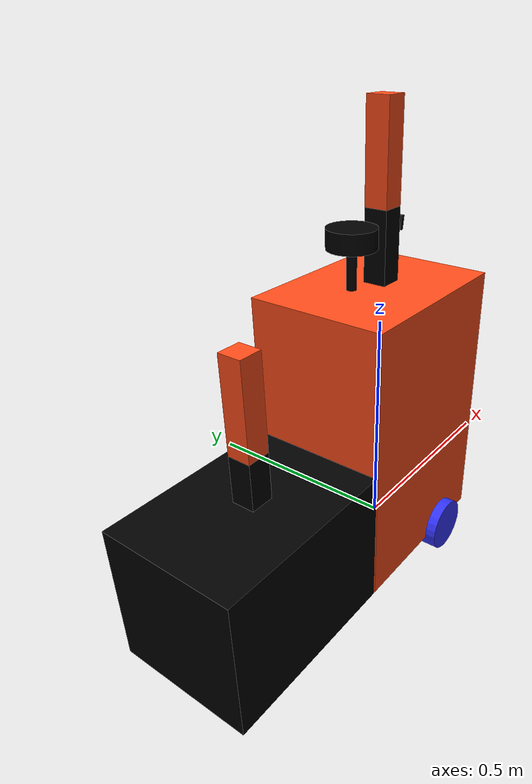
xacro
<?xml version="1.0"?>
<robot xmlns:xacro="http://www.ros.org/wiki/xacro"  name="robot">

    <xacro:arg name="use_ros2_control" default="true"/>

    <xacro:include filename = "robot_core.xacro" />

    <xacro:if value="$(arg use_ros2_control)">
        <xacro:include filename="ros2_control.xacro" />
    </xacro:if>
    <xacro:unless value="$(arg use_ros2_control)">
        <xacro:include filename="gazebo_control.xacro" />
    </xacro:unless>
    <xacro:include filename = "lidar.xacro"/>
    <xacro:include filename = "camera.xacro"/>
    <xacro:include filename = "robot_arm.xacro"/>

</robot>

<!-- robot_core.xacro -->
<robot xmlns:xacro="http://www.ros.org/wiki/xacro" >

    <xacro:include filename="inertial_macros.xacro"/>

    <xacro:property name="chassis_length" value="0.4"/>
    <xacro:property name="chassis_width" value="0.3"/>
    <xacro:property name="chassis_height" value="0.6"/>
    <xacro:property name="chassis_mass" value="1.0"/>
    <xacro:property name="wheel_radius" value="0.06"/>
    <xacro:property name="wheel_thickness" value="0.05"/>
    <xacro:property name="wheel_mass" value="0.05"/>
    <xacro:property name="wheel_offset_x" value="0.226"/>
    <xacro:property name="wheel_offset_y" value="0.1485"/>
    <xacro:property name="wheel_offset_z" value="0.01"/>
    <xacro:property name="caster_wheel_radius" value="0.028"/>
    <xacro:property name="caster_wheel_mass" value="0.01"/>
    <xacro:property name="caster_wheel_offset_x" value="-0.25"/>
    <xacro:property name="caster_wheel_offset_z" value="${wheel_offset_z - wheel_radius + caster_wheel_radius}"/>

    <material name="white">
        <color rgba="1 1 1 1" />
    </material>

    <material name="orange">
        <color rgba="1 0.3 0.1 1"/>
    </material>

    <material name="blue">
        <color rgba="0.2 0.2 1 1"/>
    </material>

    <material name="black">
        <color rgba="0 0 0 1"/>
    </material>

    <material name="red">
        <color rgba="1 0 0 1"/>
    </material>

    <!-- BASE LINK -->

    <link name="base_link">

    </link>

    <!-- BASE_FOOTPRINT LINK -->

    <joint name="base_footprint_joint" type="fixed">
        <parent link="base_link"/>
        <child link="base_footprint"/>
        <origin xyz="0 0 0" rpy="0 0 0"/>
    </joint>

    <link name="base_footprint">
    </link>

    <!-- CHASSIS LINK -->

    <joint name="chassis_joint" type="fixed">
        <parent link="base_link"/>
        <child link="chassis"/>
        <origin xyz="${-wheel_offset_x} 0 ${-wheel_offset_z}"/>
    </joint>

    <link name="chassis">
        <visual>
            <origin xyz="${chassis_length/2} 0 ${chassis_height/2}"/>
            <geometry>
                <box size="${chassis_length} ${chassis_width} ${chassis_height}"/>
            </geometry>
            <material name="orange"/>
        </visual>
        <collision>
            <origin xyz="${chassis_length/2} 0 ${chassis_height/2}"/>
            <geometry>
                <box size="${chassis_length} ${chassis_width} ${chassis_height}"/>
            </geometry>
        </collision>
        <xacro:inertial_box mass="0.5" x="${chassis_length}" y="${chassis_width}" z="${chassis_height}">
            <origin xyz="${chassis_length/2} 0 ${chassis_height/2}" rpy="0 0 0"/>
        </xacro:inertial_box>
    </link>

    <gazebo reference="chassis">
        <material>Gazebo/Orange</material>
    </gazebo>

    <!-- CHASSIS_OPTICAL LINK -->

    <joint name="chassis_optical_joint" type="fixed">
        <parent link="base_link"/>
        <child link="chassis_optical"/>
        <origin xyz="-0.43 0 ${-wheel_offset_z}"/>
    </joint>

    <link name="chassis_optical">
        <visual>
            <origin xyz="0 0 ${chassis_height/4}"/>
            <geometry>
                <box size="${chassis_length} ${chassis_width} ${chassis_height/2}"/>
            </geometry>
            <material name="black"/>
        </visual>
        <collision>
            <origin xyz="0 0 ${chassis_height/4}"/>
            <geometry>
                <box size="${chassis_length} ${chassis_width} ${chassis_height/2}"/>
            </geometry>
        </collision>
        <xacro:inertial_box mass="0.5" x="${chassis_length}" y="${chassis_width}" z="${chassis_height}">
            <origin xyz="0 0 ${chassis_height/4}" rpy="0 0 0"/>
        </xacro:inertial_box>
    </link>

    <gazebo reference="chassis_optical">
        <material>Gazebo/Black</material>
    </gazebo>

    <!-- LEFT WHEEL LINK -->

    <joint name="left_wheel_joint" type="continuous">
        <parent link="base_link"/>
        <child link="left_wheel"/>
        <origin xyz="0.05 ${wheel_offset_y} 0" rpy="-${pi/2} 0 0" />
        <axis xyz="0 0 1"/>
    </joint>

    <link name="left_wheel">
        <visual>
            <geometry>
                <cylinder radius="${wheel_radius}" length="${wheel_thickness}"/>
            </geometry>
            <material name="blue"/>
        </visual>
        <collision>
            <geometry>
                <sphere radius="${wheel_radius}"/>
            </geometry>
        </collision>
        <xacro:inertial_cylinder mass="${wheel_mass}" length="${wheel_thickness}" radius="${wheel_radius}">
            <origin xyz="0 0 0" rpy="0 0 0"/>
        </xacro:inertial_cylinder>
    </link>

    <gazebo reference="left_wheel">
        <material>Gazebo/Blue</material>
    </gazebo>

    <!-- RIGHT WHEEL LINK -->

    <joint name="right_wheel_joint" type="continuous">
        <parent link="base_link"/>
        <child link="right_wheel"/>
        <origin xyz="0.05 ${-wheel_offset_y} 0" rpy="${pi/2} 0 0" />
        <axis xyz="0 0 -1"/>
    </joint>

    <link name="right_wheel">
        <visual>
            <geometry>
                <cylinder radius="${wheel_radius}" length="${wheel_thickness}"/>
            </geometry>
            <material name="blue"/>
        </visual>
        <collision>
            <geometry>
                <sphere radius="${wheel_radius}"/>
            </geometry>
        </collision>
        <xacro:inertial_cylinder mass="${wheel_mass}" length="${wheel_thickness}" radius="${wheel_radius}">
            <origin xyz="0 0 0" rpy="0 0 0"/>
        </xacro:inertial_cylinder>
    </link>

    <gazebo reference="right_wheel">
        <material>Gazebo/Blue</material>
    </gazebo>

    <!-- CASTER WHEEL LINK -->

    <joint name="caster_wheel_joint" type="fixed">
        <parent link="chassis"/>
        <child link="caster_wheel"/>
        <origin xyz="${caster_wheel_offset_x} 0 ${caster_wheel_offset_z}"/>
    </joint>

    <link name="caster_wheel">
        <visual>
            <geometry>
                <sphere radius="${caster_wheel_radius}"/>
            </geometry>
            <material name="white"/>
        </visual>
        <collision>
            <geometry>
                <sphere radius="${caster_wheel_radius}"/>
            </geometry>
        </collision>
        <xacro:inertial_sphere mass="${caster_wheel_mass}" radius="${caster_wheel_radius}">
            <origin xyz="0 0 0" rpy="0 0 0"/>
        </xacro:inertial_sphere>
    </link>

    <gazebo reference="caster_wheel">
        <material>Gazebo/White</material>
        <mu1 value="0.001"/>
        <mu2 value="0.001"/>
    </gazebo>

</robot>

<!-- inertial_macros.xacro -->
<robot xmlns:xacro="http://www.ros.org/wiki/xacro" >

    <!-- Specify some standard inertial calculations https://en.wikipedia.org/wiki/List_of_moments_of_inertia -->
    <!-- These make use of xacro's mathematical functionality -->

    <xacro:macro name="inertial_sphere" params="mass radius *origin">
        <inertial>
            <xacro:insert_block name="origin"/>
            <mass value="${mass}" />
            <inertia ixx="${(2/5) * mass * (radius*radius)}" ixy="0.0" ixz="0.0"
                    iyy="${(2/5) * mass * (radius*radius)}" iyz="0.0"
                    izz="${(2/5) * mass * (radius*radius)}" />
        </inertial>
    </xacro:macro>

    <xacro:macro name="inertial_box" params="mass x y z *origin">
        <inertial>
            <xacro:insert_block name="origin"/>
            <mass value="${mass}" />
            <inertia ixx="${(1/12) * mass * (y*y+z*z)}" ixy="0.0" ixz="0.0"
                    iyy="${(1/12) * mass * (x*x+z*z)}" iyz="0.0"
                    izz="${(1/12) * mass * (x*x+y*y)}" />
        </inertial>
    </xacro:macro>

    <xacro:macro name="inertial_cylinder" params="mass length radius *origin">
        <inertial>
            <xacro:insert_block name="origin"/>
            <mass value="${mass}" />
            <inertia ixx="${(1/12) * mass * (3*radius*radius + length*length)}" ixy="0.0" ixz="0.0"
                    iyy="${(1/12) * mass * (3*radius*radius + length*length)}" iyz="0.0"
                    izz="${(1/2) * mass * (radius*radius)}" />
        </inertial>
    </xacro:macro>

</robot>

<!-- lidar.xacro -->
<robot xmlns:xacro="http://www.ros.org/wiki/xacro" >

    <joint name="laser_joint" type="fixed">
        <parent link="chassis"/>
        <child link="laser_frame"/>
        <origin xyz="0.122 0 0.712" rpy="0 0 0"/>
    </joint>

    <link name="laser_frame">
        <visual>
            <geometry>
                <cylinder radius="0.05" length="0.04"/>
            </geometry>
            <material name="black"/>
        </visual>
        <visual>
            <origin xyz="0 0 -0.05"/>
            <geometry>
                <cylinder radius="0.01" length="0.1"/>
            </geometry>
            <material name="black"/>
        </visual>
        <collision>
            <geometry>
                <cylinder radius="0.05" length="0.04"/>
            </geometry>
        </collision>
        <xacro:inertial_cylinder mass="0.1" length="0.04" radius="0.05">
            <origin xyz="0 0 0" rpy="0 0 0"/>
        </xacro:inertial_cylinder>
    </link>

    <gazebo reference="laser_frame">
        <material>Gazebo/Black</material>

        <sensor name="laser" type="ray">
            <pose> 0 0 0 0 0 0 </pose>
            <visualize>true</visualize>
            <update_rate>10</update_rate>
            <ray>
                <scan>
                    <horizontal>
                        <samples>360</samples>
                        <min_angle>-3.14</min_angle>
                        <max_angle>3.14</max_angle>
                    </horizontal>
                </scan>
                <range>
                    <min>0.3</min>
                    <max>12</max>
                </range>
            </ray>
            <plugin name="laser_controller" filename="libgazebo_ros_ray_sensor.so">
                <ros>
                    <argument>~/out:=scan</argument>
                </ros>
                <output_type>sensor_msgs/LaserScan</output_type>
                <frame_name>laser_frame</frame_name>
            </plugin>
        </sensor>
    </gazebo>

</robot>

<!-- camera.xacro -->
<robot xmlns:xacro="http://www.ros.org/wiki/xacro" >

    <joint name="camera_joint" type="fixed">
        <parent link="chassis"/>
        <child link="camera_link"/>
        <origin xyz="0.276 0 0.711" rpy="0 0.18 0"/>
    </joint>

    <link name="camera_link">
        <visual>
            <geometry>
                <box size="0.010 0.03 0.03"/>
            </geometry>
            <material name="black"/>
        </visual>
        <visual>
            <origin xyz="0 0 -0.05"/>
            <geometry>
                <cylinder radius="0.002" length="0.1"/>
            </geometry>
            <material name="black"/>
        </visual>
    </link>

    <joint name="camera_optical_joint" type="fixed">
        <parent link="camera_link"/>
        <child link="camera_link_optical"/>
        <origin xyz="0 0 0" rpy="${-pi/2} 0 ${-pi/2}"/>
    </joint>

    <link name="camera_link_optical"></link>

    <gazebo reference="camera_link">
        <material>Gazebo/Black</material>

        <sensor name="camera" type="camera">
            <pose> 0 0 0 0 0 0 </pose>
            <visualize>true</visualize>
            <update_rate>10</update_rate>
            <camera>
                <horizontal_fov>1.089</horizontal_fov>
                <image>
                    <format>R8G8B8</format>
                    <width>640</width>
                    <height>480</height>
                </image>
                <clip>
                    <near>0.05</near>
                    <far>8.0</far>
                </clip>
            </camera>
            <plugin name="camera_controller" filename="libgazebo_ros_camera.so">
                <frame_name>camera_link_optical</frame_name>
            </plugin>
        </sensor>
    </gazebo>

</robot>

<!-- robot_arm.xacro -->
<robot xmlns:xacro="http://www.ros.org/wiki/xacro" name="robot_arm">
    <!-- CHASSIS ARM -->
  <joint name="arm_joint1" type="fixed">
    <parent link="chassis"/>
    <child link="link1"/>
    <origin xyz="0.2 0 0.65" rpy="0 0 0"/>
  </joint>

  <link name="link1">
    <collision>
      <origin xyz="0.025 0 0" rpy="0 0 0"/>
      <geometry>
        <box size="0.05 0.05 0.2"/>
      </geometry>
    </collision>
    <visual>
      <origin xyz="0.025 0 0" rpy="0 0 0"/>
      <geometry>
        <box size="0.05 0.05 0.2"/>
      </geometry>
      <material name="black"/>
    </visual>
    <inertial>
      <origin xyz="0.025 0 0" rpy="0 0 0"/>
      <mass value="1"/>
      <inertia ixx="1.0" ixy="1.0" ixz="0.0" iyy="1.0" iyz="0.0" izz="1.0"/>
    </inertial>
  </link>

  <joint name="arm_joint2" type="revolute">
    <parent link="link1"/>
    <child link="link2"/>
    <origin xyz="0 0 0.25" rpy="0 0 0"/>
    <axis xyz='0 0 3'/>
    <limit effort='30' lower='-2.617' upper='2.617' velocity='1.571'/>
  </joint>

  <link name="link2">
    <collision>
      <origin xyz="0.025 0 -0.05" rpy="0 0 0"/>
      <geometry>
        <box size="0.05 0.05 0.2"/>
      </geometry>
    </collision>
    <visual>
      <origin xyz="0.025 0 -0.05" rpy="0 0 0"/>
      <geometry>
        <box size="0.05 0.05 0.2"/>
      </geometry>
      <material name="orange"/>
    </visual>
    <inertial>
      <origin xyz="0.025 0 -0.05" rpy="0 0 0"/>
      <mass value="1"/>
      <inertia ixx="1.0" ixy="0.0" ixz="0.0" iyy="1.0" iyz="0.0" izz="1.0"/>
    </inertial>
  </link>

    <!-- CASSIS_OPTICAL ARM -->

  <joint name="optical_arm_joint1" type="fixed">
    <parent link="chassis_optical"/>
    <child link="optical_link1"/>
    <origin xyz="-0.01 0 0.3" rpy="0 0 0"/>
  </joint>

  <link name="optical_link1">
    <collision>
      <origin xyz="0.025 0 0" rpy="0 0 0"/>
      <geometry>
        <box size="0.05 0.05 0.2"/>
      </geometry>
    </collision>
    <visual>
      <origin xyz="0.025 0 0" rpy="0 0 0"/>
      <geometry>
        <box size="0.05 0.05 0.2"/>
      </geometry>
      <material name="black"/>
    </visual>
    <inertial>
      <origin xyz="0.025 0 0" rpy="0 0 0"/>
      <mass value="1"/>
      <inertia ixx="1.0" ixy="1.0" ixz="0.0" iyy="1.0" iyz="0.0" izz="1.0"/>
    </inertial>
  </link>

  <joint name="optical_arm_joint2" type="revolute">
    <parent link="optical_link1"/>
    <child link="optical_link2"/>
    <origin xyz="0 0 0.25" rpy="0 0 0"/>
    <axis xyz='0 0 3'/>
    <limit effort='30' lower='-2.617' upper='2.617' velocity='1.571'/>
  </joint>

  <link name="optical_link2">
    <collision>
      <origin xyz="0.025 0 -0.05" rpy="0 0 0"/>
      <geometry>
        <box size="0.05 0.05 0.2"/>
      </geometry>
    </collision>
    <visual>
      <origin xyz="0.025 0 -0.05" rpy="0 0 0"/>
      <geometry>
        <box size="0.05 0.05 0.2"/>
      </geometry>
      <material name="orange"/>
    </visual>
    <inertial>
      <origin xyz="0.025 0 -0.05" rpy="0 0 0"/>
      <mass value="1"/>
      <inertia ixx="1.0" ixy="0.0" ixz="0.0" iyy="1.0" iyz="0.0" izz="1.0"/>
    </inertial>
  </link>

</robot>
